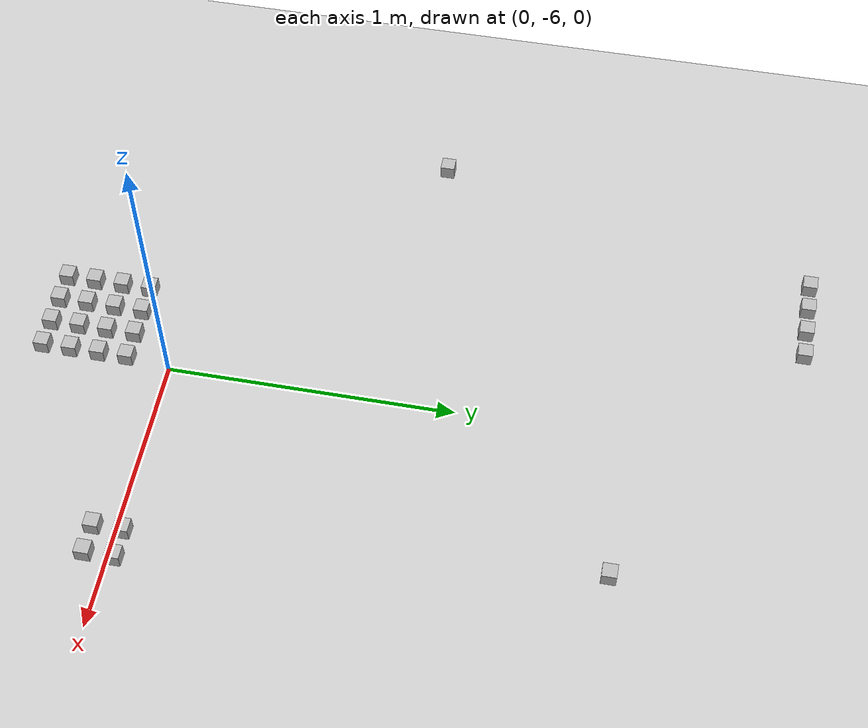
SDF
<sdf version="1.6">
 <world name="default">
  <model name="ground_plane">
   <static>1</static>
   <link name="link">
    <collision name="collision">
     <geometry><plane><normal>0 0 1</normal><size>100 100</size></plane></geometry>
     <surface><friction><ode><mu>100</mu><mu2>50</mu2></ode></friction></surface>
    </collision>
    <visual name="visual">
     <cast_shadows>0</cast_shadows>
     <geometry><plane><normal>0 0 1</normal><size>100 100</size></plane></geometry>
     <material>
      <script><uri>file://media/materials/scripts/gazebo.material</uri><name>Gazebo/Grey</name></script>
     </material>
    </visual>
   </link>
  </model>
  <model name="at80">
   <static>0</static>
   <link name="link">
    <inertial>
     <mass>0.01</mass>
     <inertia><ixx>4e-05</ixx><ixy>0</ixy><ixz>0</ixz><iyy>4e-05</iyy><iyz>0</iyz><izz>4e-05</izz></inertia>
    </inertial>
    <visual name="visual">
     <geometry><box><size>0.05 0.05 0.05</size></box></geometry>
     <material>
      <script>
       <uri>model://at0/materials/scripts</uri>
       <uri>model://at0/materials/textures</uri>
       <name>at0/Diffuse</name>
      </script>
     </material>
    </visual>
    <collision name="collision">
     <geometry><box><size>0.05 0.05 0.05</size></box></geometry>
     <surface><friction><ode><mu>0.8</mu><mu2>0.7</mu2></ode></friction></surface>
    </collision>
   </link>
   <pose>-0.317861 -6.45152 0.024993 -2.9e-05 2.9e-05 -2e-06</pose>
  </model>
  <model name="at81">
   <static>0</static>
   <link name="link">
    <inertial>
     <mass>0.01</mass>
     <inertia><ixx>4e-05</ixx><ixy>0</ixy><ixz>0</ixz><iyy>4e-05</iyy><iyz>0</iyz><izz>4e-05</izz></inertia>
    </inertial>
    <visual name="visual">
     <geometry><box><size>0.05 0.05 0.05</size></box></geometry>
     <material>
      <script>
       <uri>model://at0/materials/scripts</uri>
       <uri>model://at0/materials/textures</uri>
       <name>at0/Diffuse</name>
      </script>
     </material>
    </visual>
    <collision name="collision">
     <geometry><box><size>0.05 0.05 0.05</size></box></geometry>
     <surface><friction><ode><mu>0.8</mu><mu2>0.7</mu2></ode></friction></surface>
    </collision>
   </link>
   <pose>-0.217863 -6.45152 0.024993 2.9e-05 -2.9e-05 -2e-06</pose>
  </model>
  <model name="at82">
   <static>0</static>
   <link name="link">
    <inertial>
     <mass>0.01</mass>
     <inertia><ixx>4e-05</ixx><ixy>0</ixy><ixz>0</ixz><iyy>4e-05</iyy><iyz>0</iyz><izz>4e-05</izz></inertia>
    </inertial>
    <visual name="visual">
     <geometry><box><size>0.05 0.05 0.05</size></box></geometry>
     <material>
      <script>
       <uri>model://at0/materials/scripts</uri>
       <uri>model://at0/materials/textures</uri>
       <name>at0/Diffuse</name>
      </script>
     </material>
    </visual>
    <collision name="collision">
     <geometry><box><size>0.05 0.05 0.05</size></box></geometry>
     <surface><friction><ode><mu>0.8</mu><mu2>0.7</mu2></ode></friction></surface>
    </collision>
   </link>
   <pose>-0.117863 -6.45152 0.024993 2.9e-05 -2.9e-05 -2e-06</pose>
  </model>
  <model name="at83">
   <static>0</static>
   <link name="link">
    <inertial>
     <mass>0.01</mass>
     <inertia><ixx>4e-05</ixx><ixy>0</ixy><ixz>0</ixz><iyy>4e-05</iyy><iyz>0</iyz><izz>4e-05</izz></inertia>
    </inertial>
    <visual name="visual">
     <geometry><box><size>0.05 0.05 0.05</size></box></geometry>
     <material>
      <script>
       <uri>model://at0/materials/scripts</uri>
       <uri>model://at0/materials/textures</uri>
       <name>at0/Diffuse</name>
      </script>
     </material>
    </visual>
    <collision name="collision">
     <geometry><box><size>0.05 0.05 0.05</size></box></geometry>
     <surface><friction><ode><mu>0.8</mu><mu2>0.7</mu2></ode></friction></surface>
    </collision>
   </link>
   <pose>-0.017863 -6.45152 0.024993 2.9e-05 -2.9e-05 -2e-06</pose>
  </model>
  <model name="at84">
   <static>0</static>
   <link name="link">
    <inertial>
     <mass>0.01</mass>
     <inertia><ixx>4e-05</ixx><ixy>0</ixy><ixz>0</ixz><iyy>4e-05</iyy><iyz>0</iyz><izz>4e-05</izz></inertia>
    </inertial>
    <visual name="visual">
     <geometry><box><size>0.05 0.05 0.05</size></box></geometry>
     <material>
      <script>
       <uri>model://at0/materials/scripts</uri>
       <uri>model://at0/materials/textures</uri>
       <name>at0/Diffuse</name>
      </script>
     </material>
    </visual>
    <collision name="collision">
     <geometry><box><size>0.05 0.05 0.05</size></box></geometry>
     <surface><friction><ode><mu>0.8</mu><mu2>0.7</mu2></ode></friction></surface>
    </collision>
   </link>
   <pose>-0.317861 -6.35152 0.024993 -2.9e-05 2.9e-05 -2e-06</pose>
  </model>
  <model name="at85">
   <static>0</static>
   <link name="link">
    <inertial>
     <mass>0.01</mass>
     <inertia><ixx>4e-05</ixx><ixy>0</ixy><ixz>0</ixz><iyy>4e-05</iyy><iyz>0</iyz><izz>4e-05</izz></inertia>
    </inertial>
    <visual name="visual">
     <geometry><box><size>0.05 0.05 0.05</size></box></geometry>
     <material>
      <script>
       <uri>model://at0/materials/scripts</uri>
       <uri>model://at0/materials/textures</uri>
       <name>at0/Diffuse</name>
      </script>
     </material>
    </visual>
    <collision name="collision">
     <geometry><box><size>0.05 0.05 0.05</size></box></geometry>
     <surface><friction><ode><mu>0.8</mu><mu2>0.7</mu2></ode></friction></surface>
    </collision>
   </link>
   <pose>-0.217861 -6.35152 0.024993 -2.9e-05 2.9e-05 -2e-06</pose>
  </model>
  <model name="at86">
   <static>0</static>
   <link name="link">
    <inertial>
     <mass>0.01</mass>
     <inertia><ixx>4e-05</ixx><ixy>0</ixy><ixz>0</ixz><iyy>4e-05</iyy><iyz>0</iyz><izz>4e-05</izz></inertia>
    </inertial>
    <visual name="visual">
     <geometry><box><size>0.05 0.05 0.05</size></box></geometry>
     <material>
      <script>
       <uri>model://at0/materials/scripts</uri>
       <uri>model://at0/materials/textures</uri>
       <name>at0/Diffuse</name>
      </script>
     </material>
    </visual>
    <collision name="collision">
     <geometry><box><size>0.05 0.05 0.05</size></box></geometry>
     <surface><friction><ode><mu>0.8</mu><mu2>0.7</mu2></ode></friction></surface>
    </collision>
   </link>
   <pose>-0.117863 -6.35152 0.024993 2.9e-05 -2.9e-05 -2e-06</pose>
  </model>
  <model name="at87">
   <static>0</static>
   <link name="link">
    <inertial>
     <mass>0.01</mass>
     <inertia><ixx>4e-05</ixx><ixy>0</ixy><ixz>0</ixz><iyy>4e-05</iyy><iyz>0</iyz><izz>4e-05</izz></inertia>
    </inertial>
    <visual name="visual">
     <geometry><box><size>0.05 0.05 0.05</size></box></geometry>
     <material>
      <script>
       <uri>model://at0/materials/scripts</uri>
       <uri>model://at0/materials/textures</uri>
       <name>at0/Diffuse</name>
      </script>
     </material>
    </visual>
    <collision name="collision">
     <geometry><box><size>0.05 0.05 0.05</size></box></geometry>
     <surface><friction><ode><mu>0.8</mu><mu2>0.7</mu2></ode></friction></surface>
    </collision>
   </link>
   <pose>-0.017863 -6.35152 0.024993 2.9e-05 -2.9e-05 -2e-06</pose>
  </model>
  <model name="at88">
   <static>0</static>
   <link name="link">
    <inertial>
     <mass>0.01</mass>
     <inertia><ixx>4e-05</ixx><ixy>0</ixy><ixz>0</ixz><iyy>4e-05</iyy><iyz>0</iyz><izz>4e-05</izz></inertia>
    </inertial>
    <visual name="visual">
     <geometry><box><size>0.05 0.05 0.05</size></box></geometry>
     <material>
      <script>
       <uri>model://at0/materials/scripts</uri>
       <uri>model://at0/materials/textures</uri>
       <name>at0/Diffuse</name>
      </script>
     </material>
    </visual>
    <collision name="collision">
     <geometry><box><size>0.05 0.05 0.05</size></box></geometry>
     <surface><friction><ode><mu>0.8</mu><mu2>0.7</mu2></ode></friction></surface>
    </collision>
   </link>
   <pose>-0.317861 -6.25152 0.024993 -2.9e-05 2.9e-05 -2e-06</pose>
  </model>
  <model name="at89">
   <static>0</static>
   <link name="link">
    <inertial>
     <mass>0.01</mass>
     <inertia><ixx>4e-05</ixx><ixy>0</ixy><ixz>0</ixz><iyy>4e-05</iyy><iyz>0</iyz><izz>4e-05</izz></inertia>
    </inertial>
    <visual name="visual">
     <geometry><box><size>0.05 0.05 0.05</size></box></geometry>
     <material>
      <script>
       <uri>model://at0/materials/scripts</uri>
       <uri>model://at0/materials/textures</uri>
       <name>at0/Diffuse</name>
      </script>
     </material>
    </visual>
    <collision name="collision">
     <geometry><box><size>0.05 0.05 0.05</size></box></geometry>
     <surface><friction><ode><mu>0.8</mu><mu2>0.7</mu2></ode></friction></surface>
    </collision>
   </link>
   <pose>-0.217861 -6.25152 0.024993 -2.9e-05 2.9e-05 -2e-06</pose>
  </model>
  <model name="at90">
   <static>0</static>
   <link name="link">
    <inertial>
     <mass>0.01</mass>
     <inertia><ixx>4e-05</ixx><ixy>0</ixy><ixz>0</ixz><iyy>4e-05</iyy><iyz>0</iyz><izz>4e-05</izz></inertia>
    </inertial>
    <visual name="visual">
     <geometry><box><size>0.05 0.05 0.05</size></box></geometry>
     <material>
      <script>
       <uri>model://at0/materials/scripts</uri>
       <uri>model://at0/materials/textures</uri>
       <name>at0/Diffuse</name>
      </script>
     </material>
    </visual>
    <collision name="collision">
     <geometry><box><size>0.05 0.05 0.05</size></box></geometry>
     <surface><friction><ode><mu>0.8</mu><mu2>0.7</mu2></ode></friction></surface>
    </collision>
   </link>
   <pose>-0.117863 -6.25152 0.024993 2.9e-05 -2.9e-05 -2e-06</pose>
  </model>
  <model name="at91">
   <static>0</static>
   <link name="link">
    <inertial>
     <mass>0.01</mass>
     <inertia><ixx>4e-05</ixx><ixy>0</ixy><ixz>0</ixz><iyy>4e-05</iyy><iyz>0</iyz><izz>4e-05</izz></inertia>
    </inertial>
    <visual name="visual">
     <geometry><box><size>0.05 0.05 0.05</size></box></geometry>
     <material>
      <script>
       <uri>model://at0/materials/scripts</uri>
       <uri>model://at0/materials/textures</uri>
       <name>at0/Diffuse</name>
      </script>
     </material>
    </visual>
    <collision name="collision">
     <geometry><box><size>0.05 0.05 0.05</size></box></geometry>
     <surface><friction><ode><mu>0.8</mu><mu2>0.7</mu2></ode></friction></surface>
    </collision>
   </link>
   <pose>-0.017863 -6.25152 0.024993 2.9e-05 -2.9e-05 -2e-06</pose>
  </model>
  <model name="at92">
   <static>0</static>
   <link name="link">
    <inertial>
     <mass>0.01</mass>
     <inertia><ixx>4e-05</ixx><ixy>0</ixy><ixz>0</ixz><iyy>4e-05</iyy><iyz>0</iyz><izz>4e-05</izz></inertia>
    </inertial>
    <visual name="visual">
     <geometry><box><size>0.05 0.05 0.05</size></box></geometry>
     <material>
      <script>
       <uri>model://at0/materials/scripts</uri>
       <uri>model://at0/materials/textures</uri>
       <name>at0/Diffuse</name>
      </script>
     </material>
    </visual>
    <collision name="collision">
     <geometry><box><size>0.05 0.05 0.05</size></box></geometry>
     <surface><friction><ode><mu>0.8</mu><mu2>0.7</mu2></ode></friction></surface>
    </collision>
   </link>
   <pose>-0.317861 -6.15152 0.024993 -2.9e-05 2.9e-05 -2e-06</pose>
  </model>
  <model name="at93">
   <static>0</static>
   <link name="link">
    <inertial>
     <mass>0.01</mass>
     <inertia><ixx>4e-05</ixx><ixy>0</ixy><ixz>0</ixz><iyy>4e-05</iyy><iyz>0</iyz><izz>4e-05</izz></inertia>
    </inertial>
    <visual name="visual">
     <geometry><box><size>0.05 0.05 0.05</size></box></geometry>
     <material>
      <script>
       <uri>model://at0/materials/scripts</uri>
       <uri>model://at0/materials/textures</uri>
       <name>at0/Diffuse</name>
      </script>
     </material>
    </visual>
    <collision name="collision">
     <geometry><box><size>0.05 0.05 0.05</size></box></geometry>
     <surface><friction><ode><mu>0.8</mu><mu2>0.7</mu2></ode></friction></surface>
    </collision>
   </link>
   <pose>-0.217863 -6.15152 0.024993 2.9e-05 -2.9e-05 -2e-06</pose>
  </model>
  <model name="at94">
   <static>0</static>
   <link name="link">
    <inertial>
     <mass>0.01</mass>
     <inertia><ixx>4e-05</ixx><ixy>0</ixy><ixz>0</ixz><iyy>4e-05</iyy><iyz>0</iyz><izz>4e-05</izz></inertia>
    </inertial>
    <visual name="visual">
     <geometry><box><size>0.05 0.05 0.05</size></box></geometry>
     <material>
      <script>
       <uri>model://at0/materials/scripts</uri>
       <uri>model://at0/materials/textures</uri>
       <name>at0/Diffuse</name>
      </script>
     </material>
    </visual>
    <collision name="collision">
     <geometry><box><size>0.05 0.05 0.05</size></box></geometry>
     <surface><friction><ode><mu>0.8</mu><mu2>0.7</mu2></ode></friction></surface>
    </collision>
   </link>
   <pose>-0.117863 -6.15152 0.024993 2.9e-05 -2.9e-05 -2e-06</pose>
  </model>
  <model name="at95">
   <static>0</static>
   <link name="link">
    <inertial>
     <mass>0.01</mass>
     <inertia><ixx>4e-05</ixx><ixy>0</ixy><ixz>0</ixz><iyy>4e-05</iyy><iyz>0</iyz><izz>4e-05</izz></inertia>
    </inertial>
    <visual name="visual">
     <geometry><box><size>0.05 0.05 0.05</size></box></geometry>
     <material>
      <script>
       <uri>model://at0/materials/scripts</uri>
       <uri>model://at0/materials/textures</uri>
       <name>at0/Diffuse</name>
      </script>
     </material>
    </visual>
    <collision name="collision">
     <geometry><box><size>0.05 0.05 0.05</size></box></geometry>
     <surface><friction><ode><mu>0.8</mu><mu2>0.7</mu2></ode></friction></surface>
    </collision>
   </link>
   <pose>-0.017863 -6.15152 0.024993 2.9e-05 -2.9e-05 -2e-06</pose>
  </model>
  <model name="at112">
   <static>0</static>
   <link name="link">
    <inertial>
     <mass>0.01</mass>
     <inertia><ixx>4e-05</ixx><ixy>0</ixy><ixz>0</ixz><iyy>4e-05</iyy><iyz>0</iyz><izz>4e-05</izz></inertia>
    </inertial>
    <visual name="visual">
     <geometry><box><size>0.05 0.05 0.05</size></box></geometry>
     <material>
      <script>
       <uri>model://at0/materials/scripts</uri>
       <uri>model://at0/materials/textures</uri>
       <name>at0/Diffuse</name>
      </script>
     </material>
    </visual>
    <collision name="collision">
     <geometry><box><size>0.05 0.05 0.05</size></box></geometry>
     <surface><friction><ode><mu>0.8</mu><mu2>0.7</mu2></ode></friction></surface>
    </collision>
   </link>
   <pose>-0.742337 -3.8549 0.024993 2.9e-05 -2.9e-05 -2e-06</pose>
  </model>
  <model name="at113">
   <static>0</static>
   <link name="link">
    <inertial>
     <mass>0.01</mass>
     <inertia><ixx>4e-05</ixx><ixy>0</ixy><ixz>0</ixz><iyy>4e-05</iyy><iyz>0</iyz><izz>4e-05</izz></inertia>
    </inertial>
    <visual name="visual">
     <geometry><box><size>0.05 0.05 0.05</size></box></geometry>
     <material>
      <script>
       <uri>model://at0/materials/scripts</uri>
       <uri>model://at0/materials/textures</uri>
       <name>at0/Diffuse</name>
      </script>
     </material>
    </visual>
    <collision name="collision">
     <geometry><box><size>0.05 0.05 0.05</size></box></geometry>
     <surface><friction><ode><mu>0.8</mu><mu2>0.7</mu2></ode></friction></surface>
    </collision>
   </link>
   <pose>-0.642337 -3.8549 0.024993 2.9e-05 -2.9e-05 -2e-06</pose>
  </model>
  <model name="at114">
   <static>0</static>
   <link name="link">
    <inertial>
     <mass>0.01</mass>
     <inertia><ixx>4e-05</ixx><ixy>0</ixy><ixz>0</ixz><iyy>4e-05</iyy><iyz>0</iyz><izz>4e-05</izz></inertia>
    </inertial>
    <visual name="visual">
     <geometry><box><size>0.05 0.05 0.05</size></box></geometry>
     <material>
      <script>
       <uri>model://at0/materials/scripts</uri>
       <uri>model://at0/materials/textures</uri>
       <name>at0/Diffuse</name>
      </script>
     </material>
    </visual>
    <collision name="collision">
     <geometry><box><size>0.05 0.05 0.05</size></box></geometry>
     <surface><friction><ode><mu>0.8</mu><mu2>0.7</mu2></ode></friction></surface>
    </collision>
   </link>
   <pose>-0.542335 -3.8549 0.024993 -2.9e-05 2.9e-05 -2e-06</pose>
  </model>
  <model name="at115">
   <static>0</static>
   <link name="link">
    <inertial>
     <mass>0.01</mass>
     <inertia><ixx>4e-05</ixx><ixy>0</ixy><ixz>0</ixz><iyy>4e-05</iyy><iyz>0</iyz><izz>4e-05</izz></inertia>
    </inertial>
    <visual name="visual">
     <geometry><box><size>0.05 0.05 0.05</size></box></geometry>
     <material>
      <script>
       <uri>model://at0/materials/scripts</uri>
       <uri>model://at0/materials/textures</uri>
       <name>at0/Diffuse</name>
      </script>
     </material>
    </visual>
    <collision name="collision">
     <geometry><box><size>0.05 0.05 0.05</size></box></geometry>
     <surface><friction><ode><mu>0.8</mu><mu2>0.7</mu2></ode></friction></surface>
    </collision>
   </link>
   <pose>-0.442335 -3.8549 0.024993 -2.9e-05 2.9e-05 -2e-06</pose>
  </model>
  <model name="at188">
   <static>0</static>
   <link name="link">
    <inertial>
     <mass>0.01</mass>
     <inertia><ixx>4e-05</ixx><ixy>0</ixy><ixz>0</ixz><iyy>4e-05</iyy><iyz>0</iyz><izz>4e-05</izz></inertia>
    </inertial>
    <visual name="visual">
     <geometry><box><size>0.05 0.05 0.05</size></box></geometry>
     <material>
      <script>
       <uri>model://at0/materials/scripts</uri>
       <uri>model://at0/materials/textures</uri>
       <name>at0/Diffuse</name>
      </script>
     </material>
    </visual>
    <collision name="collision">
     <geometry><box><size>0.05 0.05 0.05</size></box></geometry>
     <surface><friction><ode><mu>0.8</mu><mu2>0.7</mu2></ode></friction></surface>
    </collision>
   </link>
   <pose>0.64813 -6.07296 0.024993 -2.9e-05 2.9e-05 -2e-06</pose>
  </model>
  <model name="at189">
   <static>0</static>
   <link name="link">
    <inertial>
     <mass>0.01</mass>
     <inertia><ixx>4e-05</ixx><ixy>0</ixy><ixz>0</ixz><iyy>4e-05</iyy><iyz>0</iyz><izz>4e-05</izz></inertia>
    </inertial>
    <visual name="visual">
     <geometry><box><size>0.05 0.05 0.05</size></box></geometry>
     <material>
      <script>
       <uri>model://at0/materials/scripts</uri>
       <uri>model://at0/materials/textures</uri>
       <name>at0/Diffuse</name>
      </script>
     </material>
    </visual>
    <collision name="collision">
     <geometry><box><size>0.05 0.05 0.05</size></box></geometry>
     <surface><friction><ode><mu>0.8</mu><mu2>0.7</mu2></ode></friction></surface>
    </collision>
   </link>
   <pose>0.74813 -6.07296 0.024993 -2.9e-05 2.9e-05 -2e-06</pose>
  </model>
  <model name="at190">
   <static>0</static>
   <link name="link">
    <inertial>
     <mass>0.01</mass>
     <inertia><ixx>4e-05</ixx><ixy>0</ixy><ixz>0</ixz><iyy>4e-05</iyy><iyz>0</iyz><izz>4e-05</izz></inertia>
    </inertial>
    <visual name="visual">
     <geometry><box><size>0.05 0.05 0.05</size></box></geometry>
     <material>
      <script>
       <uri>model://at0/materials/scripts</uri>
       <uri>model://at0/materials/textures</uri>
       <name>at0/Diffuse</name>
      </script>
     </material>
    </visual>
    <collision name="collision">
     <geometry><box><size>0.05 0.05 0.05</size></box></geometry>
     <surface><friction><ode><mu>0.8</mu><mu2>0.7</mu2></ode></friction></surface>
    </collision>
   </link>
   <pose>0.648128 -5.97296 0.024993 2.9e-05 -2.9e-05 -2e-06</pose>
  </model>
  <model name="at191">
   <static>0</static>
   <link name="link">
    <inertial>
     <mass>0.01</mass>
     <inertia><ixx>4e-05</ixx><ixy>0</ixy><ixz>0</ixz><iyy>4e-05</iyy><iyz>0</iyz><izz>4e-05</izz></inertia>
    </inertial>
    <visual name="visual">
     <geometry><box><size>0.05 0.05 0.05</size></box></geometry>
     <material>
      <script>
       <uri>model://at0/materials/scripts</uri>
       <uri>model://at0/materials/textures</uri>
       <name>at0/Diffuse</name>
      </script>
     </material>
    </visual>
    <collision name="collision">
     <geometry><box><size>0.05 0.05 0.05</size></box></geometry>
     <surface><friction><ode><mu>0.8</mu><mu2>0.7</mu2></ode></friction></surface>
    </collision>
   </link>
   <pose>0.74813 -5.97296 0.024993 -2.9e-05 2.9e-05 -2e-06</pose>
  </model>
  <model name="at230">
   <static>0</static>
   <link name="link">
    <inertial>
     <mass>0.01</mass>
     <inertia><ixx>4e-05</ixx><ixy>0</ixy><ixz>0</ixz><iyy>4e-05</iyy><iyz>0</iyz><izz>4e-05</izz></inertia>
    </inertial>
    <visual name="visual">
     <geometry><box><size>0.05 0.05 0.05</size></box></geometry>
     <material>
      <script>
       <uri>model://at0/materials/scripts</uri>
       <uri>model://at0/materials/textures</uri>
       <name>at0/Diffuse</name>
      </script>
     </material>
    </visual>
    <collision name="collision">
     <geometry><box><size>0.05 0.05 0.05</size></box></geometry>
     <surface><friction><ode><mu>0.8</mu><mu2>0.7</mu2></ode></friction></surface>
    </collision>
   </link>
   <pose>0.532396 -4.41155 0.024993 2.9e-05 -2.9e-05 -2e-06</pose>
  </model>
  <model name="at245">
   <static>0</static>
   <link name="link">
    <inertial>
     <mass>0.01</mass>
     <inertia><ixx>4e-05</ixx><ixy>0</ixy><ixz>0</ixz><iyy>4e-05</iyy><iyz>0</iyz><izz>4e-05</izz></inertia>
    </inertial>
    <visual name="visual">
     <geometry><box><size>0.05 0.05 0.05</size></box></geometry>
     <material>
      <script>
       <uri>model://at0/materials/scripts</uri>
       <uri>model://at0/materials/textures</uri>
       <name>at0/Diffuse</name>
      </script>
     </material>
    </visual>
    <collision name="collision">
     <geometry><box><size>0.05 0.05 0.05</size></box></geometry>
     <surface><friction><ode><mu>0.8</mu><mu2>0.7</mu2></ode></friction></surface>
    </collision>
   </link>
   <pose>-1.0622 -5.21107 0.024993 -2.9e-05 2.9e-05 -2e-06</pose>
  </model>
 </world>
</sdf>
